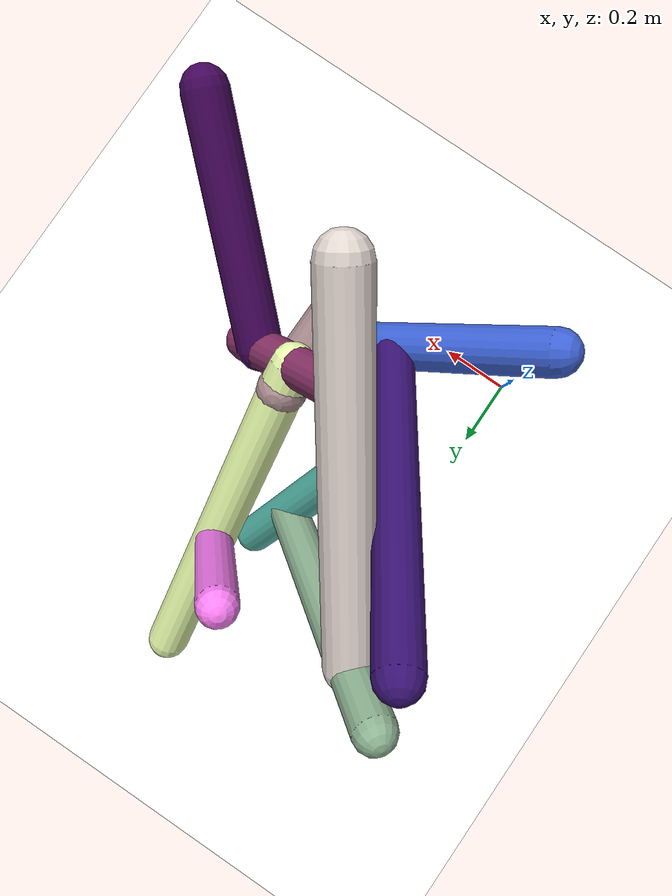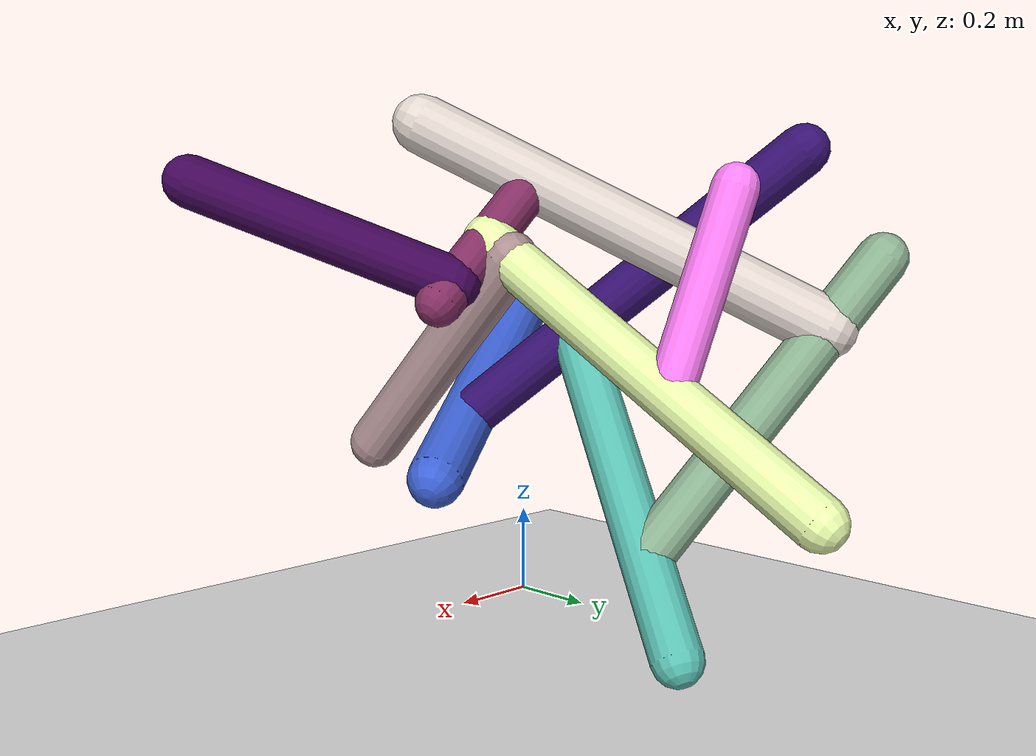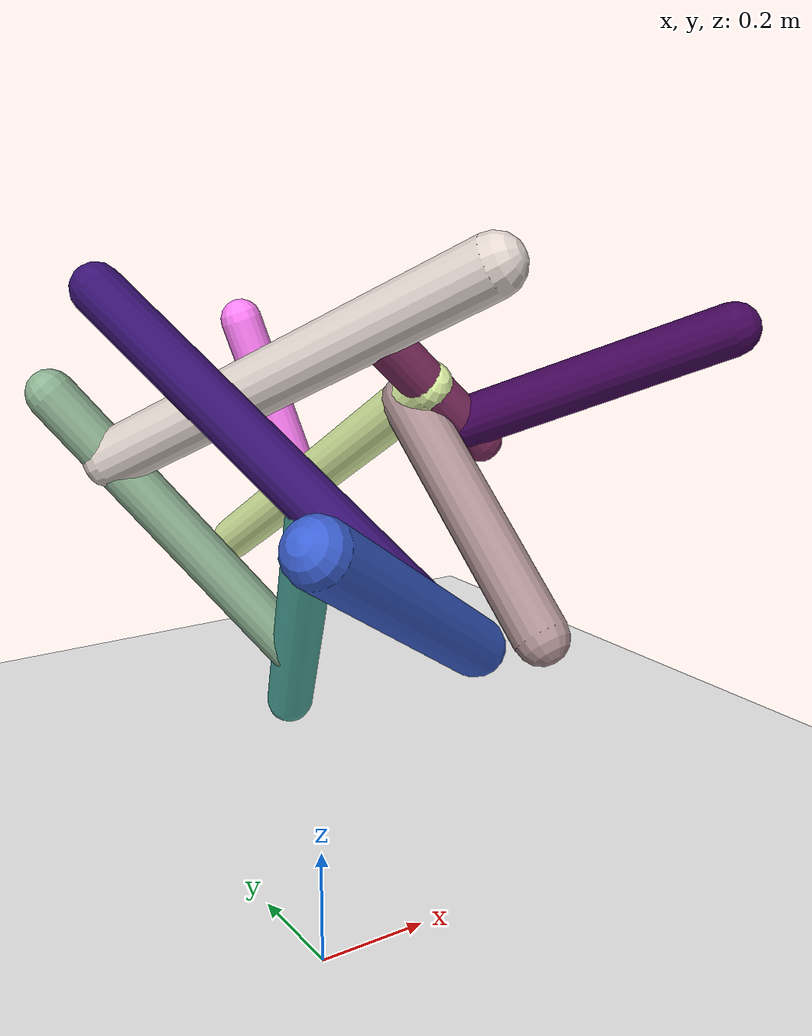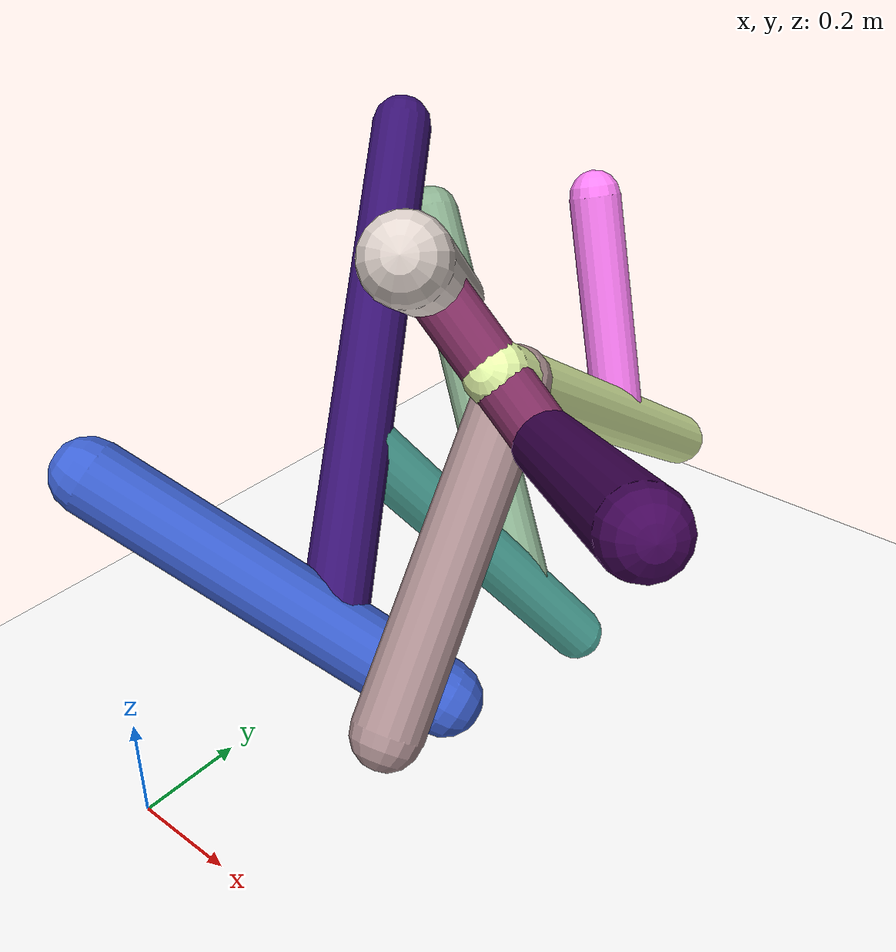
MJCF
<mujoco model="morphology">
  <option timestep="0.01"/>
  <default>
    <default class="/"/>
    <default class="0/"/>
    <default class="0/1/"/>
    <default class="0/1/2/"/>
    <default class="0/1/2/3/"/>
    <default class="0/1/2/3/4/"/>
    <default class="0/1/2/3/4/5/"/>
    <default class="0/1/2/3/4/5/6/"/>
    <default class="0/1/2/3/4/5/6/7/"/>
    <default class="0/1/2/3/4/5/6/8/"/>
    <default class="0/1/2/3/4/5/9/"/>
  </default>
  <asset>
    <texture name="texplane" type="2d" builtin="checker" rgb1="0.10000000000000001 0.20000000000000001 0.29999999999999999" rgb2="0.20000000000000001 0.29999999999999999 0.40000000000000002" width="300" height="300"/>
    <material name="MatPlane" class="/" texture="texplane" texrepeat="20 20" specular="1" shininess="1" reflectance="0.5"/>
  </asset>
  <worldbody>
    <light name="//unnamed_light_0" class="/" directional="true" pos="0 0 1.5" dir="0 0 -1.3" cutoff="100" exponent="1" diffuse="1 1 1" specular="0.10000000000000001 0.10000000000000001 0.10000000000000001"/>
    <geom name="ground" class="/" type="plane" size="15 15 0.5" material="MatPlane" rgba="1 1 1 1"/>
    <site name="body" class="/" size="9.9999999999999995e-07 9.9999999999999995e-07 9.9999999999999995e-07" pos="0 0 0.70965955257415769"/>
    <body pos="0 0 0.70965955257415769" name="0/">
      <freejoint name="0/"/>
      <geom name="0/geom" class="0/" type="capsule" contype="1" conaffinity="1" condim="3" size="0.061392560212186136" rgba="0.23608506224037418 0.38253429358479663 0.82587264824765794 1" friction="0.59999999999999998 0.10000000000000001 0.10000000000000001" fromto="0 0 0 0.49279967721409501 0.244687779568455 -0.32545226121341764"/>
      <site name="0/end0" class="0/" size="0.0050000000000000001" pos="0.49279967721409501 0.244687779568455 -0.32545226121341764"/>
      <site name="0/attach1" class="0/" size="9.9999999999999995e-07 9.9999999999999995e-07 9.9999999999999995e-07" pos="0.33456317089795551 0.16611926346055006 -0.22095051097236476"/>
      <body pos="0.33456317089795551 0.16611926346055006 -0.22095051097236476" name="0/1/">
        <geom name="0/1/geom" class="0/1/" type="capsule" contype="1" conaffinity="1" condim="3" size="0.054069998461815344" rgba="0.21600676083168679 0.066787596390504467 0.44121601987426506 1" friction="0.59999999999999998 0.10000000000000001 0.10000000000000001" fromto="0 0 0 -0.3828283731632442 0.60817508110434648 0.57795843473918684"/>
        <site name="0/1/end1" class="0/1/" size="0.0050000000000000001" pos="-0.3828283731632442 0.60817508110434648 0.57795843473918684"/>
        <site name="0/1/attach2" class="0/1/" size="9.9999999999999995e-07 9.9999999999999995e-07 9.9999999999999995e-07" pos="-0.12975038091587623 0.20612617550994317 0.19588497697106691"/>
        <body pos="-0.12975038091587623 0.20612617550994317 0.19588497697106691" name="0/1/2/">
          <joint name="0/1/2/joint/" class="0/1/" type="hinge" axis="-0.90976629594173331 -0.30091488447744968 -0.28596419193385347" limited="true" range="-32.670075626152467 32.670075626152467"/>
          <geom name="0/1/2/geom" class="0/1/2/" type="capsule" contype="1" conaffinity="1" condim="3" size="0.053365249240765342" rgba="0.342370868200774 0.7377941506895066 0.68412590077024105 1" friction="0.59999999999999998 0.10000000000000001 0.10000000000000001" fromto="0 0 0 0.17088528028599848 0.43199753354820114 -0.58459401478354145"/>
          <site name="0/1/2/end2" class="0/1/2/" size="0.0050000000000000001" pos="0.17088528028599848 0.43199753354820114 -0.58459401478354145"/>
          <site name="0/1/2/attach3" class="0/1/2/" size="9.9999999999999995e-07 9.9999999999999995e-07 9.9999999999999995e-07" pos="0.12207215955612383 0.30859809431736535 -0.41760562248999394"/>
          <body pos="0.12207215955612383 0.30859809431736535 -0.41760562248999394" name="0/1/2/3/">
            <joint name="0/1/2/3/joint/" class="0/1/2/" type="hinge" axis="-0.97346138147785533 0.13600811730165713 -0.1840508918731017" limited="true" range="-63.988758339457839 63.988758339457839"/>
            <geom name="0/1/2/3/geom" class="0/1/2/3/" type="capsule" contype="1" conaffinity="1" condim="3" size="0.052682881385378848" rgba="0.54206085723028508 0.68630431983719331 0.56048178421692063 1" friction="0.59999999999999998 0.10000000000000001 0.10000000000000001" fromto="0 0 0 -0.43425410798078684 0.24653882795746496 0.5810043124160551"/>
            <site name="0/1/2/3/end3" class="0/1/2/3/" size="0.0050000000000000001" pos="-0.43425410798078684 0.24653882795746496 0.5810043124160551"/>
            <site name="0/1/2/3/attach4" class="0/1/2/3/" size="9.9999999999999995e-07 9.9999999999999995e-07 9.9999999999999995e-07" pos="-0.33059484591143923 0.18768841639464939 0.44231482813184053"/>
            <body pos="-0.33059484591143923 0.18768841639464939 0.44231482813184053" name="0/1/2/3/4/">
              <joint name="0/1/2/3/4/joint/" class="0/1/2/3/" type="hinge" axis="-5.5511151231257827e-17 -0.92055207200285638 0.39061986986230979" limited="true" range="-44.779769794823068 44.779769794823068"/>
              <geom name="0/1/2/3/4/geom" class="0/1/2/3/4/" type="capsule" contype="1" conaffinity="1" condim="3" size="0.062210407707558923" rgba="0.8715154724250691 0.82558020757944151 0.79999376326285487 1" friction="0.59999999999999998 0.10000000000000001 0.10000000000000001" fromto="0 0 0 0.47827615754252539 -0.67737527401808306 0.41124011407827998"/>
              <site name="0/1/2/3/4/end4" class="0/1/2/3/4/" size="0.0050000000000000001" pos="0.47827615754252539 -0.67737527401808306 0.41124011407827998"/>
              <site name="0/1/2/3/4/attach5" class="0/1/2/3/4/" size="9.9999999999999995e-07 9.9999999999999995e-07 9.9999999999999995e-07" pos="0.34237551724103438 -0.48490125662935218 0.29438755109864356"/>
              <body pos="0.34237551724103438 -0.48490125662935218 0.29438755109864356" name="0/1/2/3/4/5/">
                <joint name="0/1/2/3/4/5/joint/" class="0/1/2/3/4/" type="hinge" axis="0.85614861912563545 0.44170084436026258 -0.26816022460592182" limited="true" range="-52.660266858726096 52.660266858726096"/>
                <geom name="0/1/2/3/4/5/geom" class="0/1/2/3/4/5/" type="capsule" contype="1" conaffinity="1" condim="3" size="0.046222080782035949" rgba="0.50524621006476544 0.17984630030512927 0.3824171373901003 1" friction="0.59999999999999998 0.10000000000000001 0.10000000000000001" fromto="0 0 0 0.26596587338799083 0.0066285210457820432 -0.23799873808504024"/>
                <site name="0/1/2/3/4/5/end5" class="0/1/2/3/4/5/" size="0.0050000000000000001" pos="0.26596587338799083 0.0066285210457820432 -0.23799873808504024"/>
                <site name="0/1/2/3/4/5/attach6" class="0/1/2/3/4/5/" size="9.9999999999999995e-07 9.9999999999999995e-07 9.9999999999999995e-07" pos="0.13230416384037524 0.0032973438407309635 -0.11839197125666841"/>
                <body pos="0.13230416384037524 0.0032973438407309635 -0.11839197125666841" name="0/1/2/3/4/5/6/">
                  <joint name="0/1/2/3/4/5/6/joint/" class="0/1/2/3/4/5/" type="hinge" axis="5.5511151231257827e-17 0.9996123842561917 0.027840280919048499" limited="true" range="-60.554136896003691 60.554136896003691"/>
                  <geom name="0/1/2/3/4/5/6/geom" class="0/1/2/3/4/5/6/" type="capsule" contype="1" conaffinity="1" condim="3" size="0.051015910018135505" rgba="0.89776850789232565 0.97973575048513994 0.66606947527898408 1" friction="0.59999999999999998 0.10000000000000001 0.10000000000000001" fromto="0 0 0 -0.079420155026617145 0.73443923161026725 -0.46492836504321083"/>
                  <site name="0/1/2/3/4/5/6/end6" class="0/1/2/3/4/5/6/" size="0.0050000000000000001" pos="-0.079420155026617145 0.73443923161026725 -0.46492836504321083"/>
                  <site name="0/1/2/3/4/5/6/attach7" class="0/1/2/3/4/5/6/" size="9.9999999999999995e-07 9.9999999999999995e-07 9.9999999999999995e-07" pos="-0.0061592735787552606 0.056957986961148288 -0.036056602934920058"/>
                  <body pos="-0.0061592735787552606 0.056957986961148288 -0.036056602934920058" name="0/1/2/3/4/5/6/7/">
                    <joint name="0/1/2/3/4/5/6/7/joint/" class="0/1/2/3/4/5/6/" type="hinge" axis="-5.5511151231257827e-17 0.53487431746190139 0.84493163304474805" limited="true" range="-38.926828302376734 38.926828302376734"/>
                    <geom name="0/1/2/3/4/5/6/7/geom" class="0/1/2/3/4/5/6/7/" type="capsule" contype="1" conaffinity="1" condim="3" size="0.055349959634378346" rgba="0.66803390543872687 0.55413219655522494 0.56284061196359914 1" friction="0.59999999999999998 0.10000000000000001 0.10000000000000001" fromto="0 0 0 0.057782482128192036 -0.36132349664246605 -0.40205010506740063"/>
                    <site name="0/1/2/3/4/5/6/7/end7" class="0/1/2/3/4/5/6/7/" size="0.0050000000000000001" pos="0.057782482128192036 -0.36132349664246605 -0.40205010506740063"/>
                  </body>
                  <site name="0/1/2/3/4/5/6/attach8" class="0/1/2/3/4/5/6/" size="9.9999999999999995e-07 9.9999999999999995e-07 9.9999999999999995e-07" pos="-0.046523024578943126 0.43022245943102566 -0.27234741290928011"/>
                  <body pos="-0.046523024578943126 0.43022245943102566 -0.27234741290928011" name="0/1/2/3/4/5/6/8/">
                    <joint name="0/1/2/3/4/5/6/8/joint/" class="0/1/2/3/4/5/6/" type="hinge" axis="-0.99585185397671538 -0.076879887421235804 0.04866793442541581" limited="true" range="-44.98943936554037 44.98943936554037"/>
                    <geom name="0/1/2/3/4/5/6/8/geom" class="0/1/2/3/4/5/6/8/" type="capsule" contype="1" conaffinity="1" condim="3" size="0.044827006849531094" rgba="0.9940100894112599 0.49830540640086718 0.96752376023012066 1" friction="0.59999999999999998 0.10000000000000001 0.10000000000000001" fromto="0 0 0 -0.11472406122542012 0.055158442467519553 0.37382621168541075"/>
                    <site name="0/1/2/3/4/5/6/8/end8" class="0/1/2/3/4/5/6/8/" size="0.0050000000000000001" pos="-0.11472406122542012 0.055158442467519553 0.37382621168541075"/>
                  </body>
                </body>
                <site name="0/1/2/3/4/5/attach9" class="0/1/2/3/4/5/" size="9.9999999999999995e-07 9.9999999999999995e-07 9.9999999999999995e-07" pos="0.22485822850319209 0.0056040178424559342 -0.20121368937332904"/>
                <body pos="0.22485822850319209 0.0056040178424559342 -0.20121368937332904" name="0/1/2/3/4/5/9/">
                  <joint name="0/1/2/3/4/5/9/joint/" class="0/1/2/3/4/5/" type="hinge" axis="5.5511151231257827e-17 0.9996123842561917 0.027840280919048499" limited="true" range="-63.597292367986988 63.597292367986988"/>
                  <geom name="0/1/2/3/4/5/9/geom" class="0/1/2/3/4/5/9/" type="capsule" contype="1" conaffinity="1" condim="3" size="0.052270679621097826" rgba="0.25820272813481582 0.020596394605396751 0.34342371076604117 1" friction="0.59999999999999998 0.10000000000000001 0.10000000000000001" fromto="0 0 0 0.36053318400155709 -0.3572122552983471 0.19679143575546987"/>
                  <site name="0/1/2/3/4/5/9/end9" class="0/1/2/3/4/5/9/" size="0.0050000000000000001" pos="0.36053318400155709 -0.3572122552983471 0.19679143575546987"/>
                </body>
              </body>
            </body>
          </body>
        </body>
      </body>
      <camera name="0/iso" class="0/" mode="trackcom" pos="-2.2999999999999998 -2.2999999999999998 1" xyaxes="0.45000000000000001 -0.45000000000000001 0 0.29999999999999999 0.14999999999999999 0.93999999999999995"/>
    </body>
  </worldbody>
  <actuator>
    <motor name="0/1/2/motor" class="0/1/2/" ctrllimited="true" ctrlrange="-1 1" gear="89" joint="0/1/2/joint/"/>
    <motor name="0/1/2/3/motor" class="0/1/2/3/" ctrllimited="true" ctrlrange="-1 1" gear="80" joint="0/1/2/3/joint/"/>
    <motor name="0/1/2/3/4/motor" class="0/1/2/3/4/" ctrllimited="true" ctrlrange="-1 1" gear="63" joint="0/1/2/3/4/joint/"/>
    <motor name="0/1/2/3/4/5/motor" class="0/1/2/3/4/5/" ctrllimited="true" ctrlrange="-1 1" gear="58" joint="0/1/2/3/4/5/joint/"/>
    <motor name="0/1/2/3/4/5/6/motor" class="0/1/2/3/4/5/6/" ctrllimited="true" ctrlrange="-1 1" gear="79" joint="0/1/2/3/4/5/6/joint/"/>
    <motor name="0/1/2/3/4/5/6/7/motor" class="0/1/2/3/4/5/6/7/" ctrllimited="true" ctrlrange="-1 1" gear="59" joint="0/1/2/3/4/5/6/7/joint/"/>
    <motor name="0/1/2/3/4/5/6/8/motor" class="0/1/2/3/4/5/6/8/" ctrllimited="true" ctrlrange="-1 1" gear="55" joint="0/1/2/3/4/5/6/8/joint/"/>
    <motor name="0/1/2/3/4/5/9/motor" class="0/1/2/3/4/5/9/" ctrllimited="true" ctrlrange="-1 1" gear="98" joint="0/1/2/3/4/5/9/joint/"/>
  </actuator>
  <sensor>
    <subtreelinvel name="velocity" body="0/"/>
  </sensor>
</mujoco>
